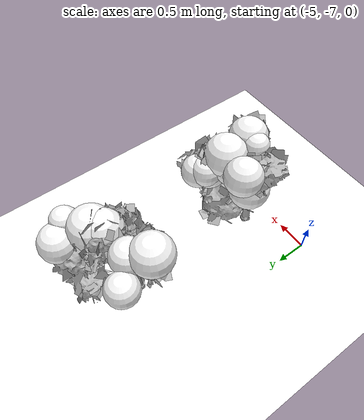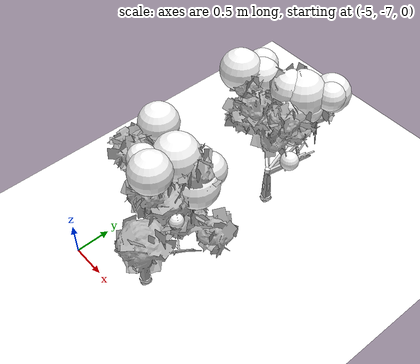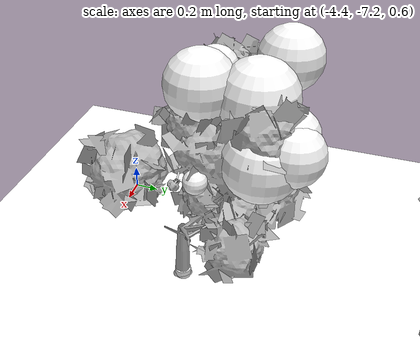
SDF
<sdf version="1.11">
 <world name="peach_orchard">
  <model name="ground">
   <static>true</static>
   <link name="link">
    <visual name="soil">
     <geometry><plane><normal>0 0 1</normal><size>32 22</size></plane></geometry>
     <material>
      <ambient>1 1 1 1</ambient>
      <diffuse>1 1 1 1</diffuse>
      <specular>0.1 0.1 0.1 1</specular>
      <pbr>
       <metal>
        <albedo_map>textures/soil_albedo.png</albedo_map>
        <normal_map type="tangent">textures/soil_normal.png</normal_map>
        <roughness>0.95</roughness>
        <metalness>0</metalness>
       </metal>
      </pbr>
     </material>
    </visual>
    <collision name="c_soil">
     <geometry><plane><normal>0 0 1</normal><size>32 22</size></plane></geometry>
    </collision>
   </link>
  </model>
  <model name="tree_r1_t0">
   <pose>-4 -6.6 0 0 0 0</pose>
   <static>true</static>
   <link name="link">
    <visual name="tree_mesh">
     <pose>0 0 0 0 0 -0.32723</pose>
     <geometry>
      <mesh><uri>model://peach_sim/meshes/peach_tree_a.glb</uri><scale>0.996822 0.996822 0.996822</scale></mesh>
     </geometry>
    </visual>
    <visual name="trunk_0">
     <pose>0 0 0.146524 0 0 0</pose>
     <geometry><cylinder><radius>0.0518545</radius><length>0.293048</length></cylinder></geometry>
     <material>
      <ambient>1 1 1 1</ambient>
      <diffuse>1 1 1 1</diffuse>
      <specular>0.1 0.1 0.1 1</specular>
      <pbr>
       <metal>
        <albedo_map>textures/bark_albedo.png</albedo_map>
        <normal_map type="tangent">textures/bark_normal.png</normal_map>
        <roughness>0.9</roughness>
        <metalness>0</metalness>
       </metal>
      </pbr>
     </material>
    </visual>
    <collision name="c_trunk_0">
     <pose>0 0 0.146524 0 0 0</pose>
     <geometry><cylinder><radius>0.0518545</radius><length>0.293048</length></cylinder></geometry>
    </collision>
    <visual name="trunk_1">
     <pose>0 0 0.412931 0 0 0</pose>
     <geometry><cylinder><radius>0.0373353</radius><length>0.239766</length></cylinder></geometry>
     <material>
      <ambient>1 1 1 1</ambient>
      <diffuse>1 1 1 1</diffuse>
      <specular>0.1 0.1 0.1 1</specular>
      <pbr>
       <metal>
        <albedo_map>textures/bark_albedo.png</albedo_map>
        <normal_map type="tangent">textures/bark_normal.png</normal_map>
        <roughness>0.9</roughness>
        <metalness>0</metalness>
       </metal>
      </pbr>
     </material>
    </visual>
    <collision name="c_trunk_1">
     <pose>0 0 0.412931 0 0 0</pose>
     <geometry><cylinder><radius>0.0373353</radius><length>0.239766</length></cylinder></geometry>
    </collision>
    <visual name="root_flare">
     <pose>0 0 0.035 0 0 0</pose>
     <geometry><cylinder><radius>0.0751891</radius><length>0.07</length></cylinder></geometry>
     <material>
      <ambient>1 1 1 1</ambient>
      <diffuse>1 1 1 1</diffuse>
      <specular>0.1 0.1 0.1 1</specular>
      <pbr>
       <metal>
        <albedo_map>textures/bark_albedo.png</albedo_map>
        <normal_map type="tangent">textures/bark_normal.png</normal_map>
        <roughness>0.95</roughness>
        <metalness>0</metalness>
       </metal>
      </pbr>
     </material>
    </visual>
    <visual name="scaffold_0">
     <pose>-0.120347 0.265685 0.763683 0 0.81755 1.99612</pose>
     <geometry><cylinder><radius>0.022</radius><length>0.799677</length></cylinder></geometry>
     <material>
      <ambient>1 1 1 1</ambient>
      <diffuse>1 1 1 1</diffuse>
      <specular>0.1 0.1 0.1 1</specular>
      <pbr>
       <metal>
        <albedo_map>textures/bark_albedo.png</albedo_map>
        <normal_map type="tangent">textures/bark_normal.png</normal_map>
        <roughness>0.9</roughness>
        <metalness>0</metalness>
       </metal>
      </pbr>
     </material>
    </visual>
    <collision name="c_scaffold_0">
     <pose>-0.120347 0.265685 0.763683 0 0.81755 1.99612</pose>
     <geometry><cylinder><radius>0.022</radius><length>0.799677</length></cylinder></geometry>
    </collision>
    <visual name="branchlet_0_0">
     <pose>-0.0653595 0.373747 0.827793 0 1.86183 0.17893</pose>
     <geometry><cylinder><radius>0.012</radius><length>0.203819</length></cylinder></geometry>
     <material>
      <ambient>1 1 1 1</ambient>
      <diffuse>1 1 1 1</diffuse>
      <specular>0.1 0.1 0.1 1</specular>
      <pbr>
       <metal>
        <albedo_map>textures/bark_albedo.png</albedo_map>
        <normal_map type="tangent">textures/bark_normal.png</normal_map>
        <roughness>0.9</roughness>
        <metalness>0</metalness>
       </metal>
      </pbr>
     </material>
    </visual>
    <visual name="branchlet_0_1">
     <pose>-0.0694995 0.188723 0.861073 0 1.44563 -1.06092</pose>
     <geometry><cylinder><radius>0.012</radius><length>0.347574</length></cylinder></geometry>
     <material>
      <ambient>1 1 1 1</ambient>
      <diffuse>1 1 1 1</diffuse>
      <specular>0.1 0.1 0.1 1</specular>
      <pbr>
       <metal>
        <albedo_map>textures/bark_albedo.png</albedo_map>
        <normal_map type="tangent">textures/bark_normal.png</normal_map>
        <roughness>0.9</roughness>
        <metalness>0</metalness>
       </metal>
      </pbr>
     </material>
    </visual>
    <visual name="branchlet_0_2">
     <pose>-0.223592 0.457648 0.883236 0 1.38306 2.12662</pose>
     <geometry><cylinder><radius>0.012</radius><length>0.232148</length></cylinder></geometry>
     <material>
      <ambient>1 1 1 1</ambient>
      <diffuse>1 1 1 1</diffuse>
      <specular>0.1 0.1 0.1 1</specular>
      <pbr>
       <metal>
        <albedo_map>textures/bark_albedo.png</albedo_map>
        <normal_map type="tangent">textures/bark_normal.png</normal_map>
        <roughness>0.9</roughness>
        <metalness>0</metalness>
       </metal>
      </pbr>
     </material>
    </visual>
    <visual name="scaffold_1">
     <pose>0.030639 0.388616 0.719755 0 1.03858 1.49212</pose>
     <geometry><cylinder><radius>0.022</radius><length>0.904792</length></cylinder></geometry>
     <material>
      <ambient>1 1 1 1</ambient>
      <diffuse>1 1 1 1</diffuse>
      <specular>0.1 0.1 0.1 1</specular>
      <pbr>
       <metal>
        <albedo_map>textures/bark_albedo.png</albedo_map>
        <normal_map type="tangent">textures/bark_normal.png</normal_map>
        <roughness>0.9</roughness>
        <metalness>0</metalness>
       </metal>
      </pbr>
     </material>
    </visual>
    <collision name="c_scaffold_1">
     <pose>0.030639 0.388616 0.719755 0 1.03858 1.49212</pose>
     <geometry><cylinder><radius>0.022</radius><length>0.904792</length></cylinder></geometry>
    </collision>
    <visual name="branchlet_1_0">
     <pose>0.0566015 0.486645 0.768573 0 1.11998 1.31604</pose>
     <geometry><cylinder><radius>0.012</radius><length>0.230577</length></cylinder></geometry>
     <material>
      <ambient>1 1 1 1</ambient>
      <diffuse>1 1 1 1</diffuse>
      <specular>0.1 0.1 0.1 1</specular>
      <pbr>
       <metal>
        <albedo_map>textures/bark_albedo.png</albedo_map>
        <normal_map type="tangent">textures/bark_normal.png</normal_map>
        <roughness>0.9</roughness>
        <metalness>0</metalness>
       </metal>
      </pbr>
     </material>
    </visual>
    <visual name="branchlet_1_1">
     <pose>0.175679 0.353747 0.693187 0 1.63917 -0.0473741</pose>
     <geometry><cylinder><radius>0.012</radius><length>0.295498</length></cylinder></geometry>
     <material>
      <ambient>1 1 1 1</ambient>
      <diffuse>1 1 1 1</diffuse>
      <specular>0.1 0.1 0.1 1</specular>
      <pbr>
       <metal>
        <albedo_map>textures/bark_albedo.png</albedo_map>
        <normal_map type="tangent">textures/bark_normal.png</normal_map>
        <roughness>0.9</roughness>
        <metalness>0</metalness>
       </metal>
      </pbr>
     </material>
    </visual>
    <visual name="canopy_0">
     <pose>0.0268063 0.477382 1.70556 0 0 0</pose>
     <geometry><sphere><radius>0.200922</radius></sphere></geometry>
     <material>
      <ambient>1 1 1 1</ambient>
      <diffuse>1 1 1 1</diffuse>
      <specular>0.1 0.1 0.1 1</specular>
      <pbr>
       <metal>
        <albedo_map>textures/leaf_albedo.png</albedo_map>
        <normal_map type="tangent">textures/leaf_normal.png</normal_map>
        <roughness>0.85</roughness>
        <metalness>0</metalness>
       </metal>
      </pbr>
     </material>
    </visual>
    <collision name="c_canopy_0">
     <pose>0.0268063 0.477382 1.70556 0 0 0</pose>
     <geometry><sphere><radius>0.200922</radius></sphere></geometry>
    </collision>
    <visual name="canopy_1">
     <pose>-0.0529744 0.395323 1.65064 0 0 0</pose>
     <geometry><sphere><radius>0.266367</radius></sphere></geometry>
     <material>
      <ambient>1 1 1 1</ambient>
      <diffuse>1 1 1 1</diffuse>
      <specular>0.1 0.1 0.1 1</specular>
      <pbr>
       <metal>
        <albedo_map>textures/leaf_albedo.png</albedo_map>
        <normal_map type="tangent">textures/leaf_normal.png</normal_map>
        <roughness>0.85</roughness>
        <metalness>0</metalness>
       </metal>
      </pbr>
     </material>
    </visual>
    <collision name="c_canopy_1">
     <pose>-0.0529744 0.395323 1.65064 0 0 0</pose>
     <geometry><sphere><radius>0.266367</radius></sphere></geometry>
    </collision>
    <visual name="canopy_2">
     <pose>0.0413651 0.591344 1.98038 0 0 0</pose>
     <geometry><sphere><radius>0.307055</radius></sphere></geometry>
     <material>
      <ambient>1 1 1 1</ambient>
      <diffuse>1 1 1 1</diffuse>
      <specular>0.1 0.1 0.1 1</specular>
      <pbr>
       <metal>
        <albedo_map>textures/leaf_albedo.png</albedo_map>
        <normal_map type="tangent">textures/leaf_normal.png</normal_map>
        <roughness>0.85</roughness>
        <metalness>0</metalness>
       </metal>
      </pbr>
     </material>
    </visual>
    <collision name="c_canopy_2">
     <pose>0.0413651 0.591344 1.98038 0 0 0</pose>
     <geometry><sphere><radius>0.307055</radius></sphere></geometry>
    </collision>
    <visual name="canopy_3">
     <pose>-0.0891126 0.571707 1.85329 0 0 0</pose>
     <geometry><sphere><radius>0.261802</radius></sphere></geometry>
     <material>
      <ambient>1 1 1 1</ambient>
      <diffuse>1 1 1 1</diffuse>
      <specular>0.1 0.1 0.1 1</specular>
      <pbr>
       <metal>
        <albedo_map>textures/leaf_albedo.png</albedo_map>
        <normal_map type="tangent">textures/leaf_normal.png</normal_map>
        <roughness>0.85</roughness>
        <metalness>0</metalness>
       </metal>
      </pbr>
     </material>
    </visual>
    <visual name="canopy_4">
     <pose>0.0908726 0.167604 2.04433 0 0 0</pose>
     <geometry><sphere><radius>0.274712</radius></sphere></geometry>
     <material>
      <ambient>1 1 1 1</ambient>
      <diffuse>1 1 1 1</diffuse>
      <specular>0.1 0.1 0.1 1</specular>
      <pbr>
       <metal>
        <albedo_map>textures/leaf_albedo.png</albedo_map>
        <normal_map type="tangent">textures/leaf_normal.png</normal_map>
        <roughness>0.85</roughness>
        <metalness>0</metalness>
       </metal>
      </pbr>
     </material>
    </visual>
    <visual name="canopy_5">
     <pose>0.242101 0.907621 1.69181 0 0 0</pose>
     <geometry><sphere><radius>0.235836</radius></sphere></geometry>
     <material>
      <ambient>1 1 1 1</ambient>
      <diffuse>1 1 1 1</diffuse>
      <specular>0.1 0.1 0.1 1</specular>
      <pbr>
       <metal>
        <albedo_map>textures/leaf_albedo.png</albedo_map>
        <normal_map type="tangent">textures/leaf_normal.png</normal_map>
        <roughness>0.85</roughness>
        <metalness>0</metalness>
       </metal>
      </pbr>
     </material>
    </visual>
    <visual name="canopy_6">
     <pose>-0.343609 0.455995 1.553 0 0 0</pose>
     <geometry><sphere><radius>0.293663</radius></sphere></geometry>
     <material>
      <ambient>1 1 1 1</ambient>
      <diffuse>1 1 1 1</diffuse>
      <specular>0.1 0.1 0.1 1</specular>
      <pbr>
       <metal>
        <albedo_map>textures/leaf_albedo.png</albedo_map>
        <normal_map type="tangent">textures/leaf_normal.png</normal_map>
        <roughness>0.85</roughness>
        <metalness>0</metalness>
       </metal>
      </pbr>
     </material>
    </visual>
    <visual name="canopy_7">
     <pose>0.26477 0.69175 1.59641 0 0 0</pose>
     <geometry><sphere><radius>0.301339</radius></sphere></geometry>
     <material>
      <ambient>1 1 1 1</ambient>
      <diffuse>1 1 1 1</diffuse>
      <specular>0.1 0.1 0.1 1</specular>
      <pbr>
       <metal>
        <albedo_map>textures/leaf_albedo.png</albedo_map>
        <normal_map type="tangent">textures/leaf_normal.png</normal_map>
        <roughness>0.85</roughness>
        <metalness>0</metalness>
       </metal>
      </pbr>
     </material>
    </visual>
    <visual name="canopy_8">
     <pose>-0.117869 0.219419 2.07042 0 0 0</pose>
     <geometry><sphere><radius>0.188732</radius></sphere></geometry>
     <material>
      <ambient>1 1 1 1</ambient>
      <diffuse>1 1 1 1</diffuse>
      <specular>0.1 0.1 0.1 1</specular>
      <pbr>
       <metal>
        <albedo_map>textures/leaf_albedo.png</albedo_map>
        <normal_map type="tangent">textures/leaf_normal.png</normal_map>
        <roughness>0.85</roughness>
        <metalness>0</metalness>
       </metal>
      </pbr>
     </material>
    </visual>
    <visual name="canopy_9">
     <pose>0.1259 0.858346 1.76832 0 0 0</pose>
     <geometry><sphere><radius>0.217199</radius></sphere></geometry>
     <material>
      <ambient>1 1 1 1</ambient>
      <diffuse>1 1 1 1</diffuse>
      <specular>0.1 0.1 0.1 1</specular>
      <pbr>
       <metal>
        <albedo_map>textures/leaf_albedo.png</albedo_map>
        <normal_map type="tangent">textures/leaf_normal.png</normal_map>
        <roughness>0.85</roughness>
        <metalness>0</metalness>
       </metal>
      </pbr>
     </material>
    </visual>
    <visual name="canopy_10">
     <pose>-0.443412 0.718659 2.09785 0 0 0</pose>
     <geometry><sphere><radius>0.262059</radius></sphere></geometry>
     <material>
      <ambient>1 1 1 1</ambient>
      <diffuse>1 1 1 1</diffuse>
      <specular>0.1 0.1 0.1 1</specular>
      <pbr>
       <metal>
        <albedo_map>textures/leaf_albedo.png</albedo_map>
        <normal_map type="tangent">textures/leaf_normal.png</normal_map>
        <roughness>0.85</roughness>
        <metalness>0</metalness>
       </metal>
      </pbr>
     </material>
    </visual>
    <visual name="foliage_0">
     <pose>0.429755 0.246917 1.42909 0 0 0</pose>
     <geometry><sphere><radius>0.0951275</radius></sphere></geometry>
     <material>
      <ambient>1 1 1 1</ambient>
      <diffuse>1 1 1 1</diffuse>
      <specular>0.1 0.1 0.1 1</specular>
      <pbr>
       <metal>
        <albedo_map>textures/leaf_albedo.png</albedo_map>
        <normal_map type="tangent">textures/leaf_normal.png</normal_map>
        <roughness>0.85</roughness>
        <metalness>0</metalness>
       </metal>
      </pbr>
     </material>
    </visual>
    <visual name="foliage_4">
     <pose>0.442585 -0.399169 1.33361 0 0 0</pose>
     <geometry><sphere><radius>0.108473</radius></sphere></geometry>
     <material>
      <ambient>1 1 1 1</ambient>
      <diffuse>1 1 1 1</diffuse>
      <specular>0.1 0.1 0.1 1</specular>
      <pbr>
       <metal>
        <albedo_map>textures/leaf_albedo.png</albedo_map>
        <normal_map type="tangent">textures/leaf_normal.png</normal_map>
        <roughness>0.85</roughness>
        <metalness>0</metalness>
       </metal>
      </pbr>
     </material>
    </visual>
    <visual name="foliage_8">
     <pose>0.487489 -0.370563 1.26705 0 0 0</pose>
     <geometry><sphere><radius>0.115801</radius></sphere></geometry>
     <material>
      <ambient>1 1 1 1</ambient>
      <diffuse>1 1 1 1</diffuse>
      <specular>0.1 0.1 0.1 1</specular>
      <pbr>
       <metal>
        <albedo_map>textures/leaf_albedo.png</albedo_map>
        <normal_map type="tangent">textures/leaf_normal.png</normal_map>
        <roughness>0.85</roughness>
        <metalness>0</metalness>
       </metal>
      </pbr>
     </material>
    </visual>
    <visual name="twig_0">
     <pose>0.403369 0.228828 1.50214 0 0.658195 2.63695</pose>
     <geometry><cylinder><radius>0.007</radius><length>0.190513</length></cylinder></geometry>
     <material>
      <ambient>1 1 1 1</ambient>
      <diffuse>1 1 1 1</diffuse>
      <specular>0.1 0.1 0.1 1</specular>
      <pbr>
       <metal>
        <albedo_map>textures/bark_albedo.png</albedo_map>
        <normal_map type="tangent">textures/bark_normal.png</normal_map>
        <roughness>0.9</roughness>
        <metalness>0</metalness>
       </metal>
      </pbr>
     </material>
    </visual>
    <visual name="twig_1">
     <pose>0.38238 0.109194 1.46974 0 0.656179 3.07622</pose>
     <geometry><cylinder><radius>0.007</radius><length>0.169421</length></cylinder></geometry>
     <material>
      <ambient>1 1 1 1</ambient>
      <diffuse>1 1 1 1</diffuse>
      <specular>0.1 0.1 0.1 1</specular>
      <pbr>
       <metal>
        <albedo_map>textures/bark_albedo.png</albedo_map>
        <normal_map type="tangent">textures/bark_normal.png</normal_map>
        <roughness>0.9</roughness>
        <metalness>0</metalness>
       </metal>
      </pbr>
     </material>
    </visual>
    <visual name="twig_2">
     <pose>0.464754 -0.0704765 1.46951 0 0.23201 -2.64196</pose>
     <geometry><cylinder><radius>0.007</radius><length>0.159211</length></cylinder></geometry>
     <material>
      <ambient>1 1 1 1</ambient>
      <diffuse>1 1 1 1</diffuse>
      <specular>0.1 0.1 0.1 1</specular>
      <pbr>
       <metal>
        <albedo_map>textures/bark_albedo.png</albedo_map>
        <normal_map type="tangent">textures/bark_normal.png</normal_map>
        <roughness>0.9</roughness>
        <metalness>0</metalness>
       </metal>
      </pbr>
     </material>
    </visual>
    <visual name="twig_3">
     <pose>0.485276 -0.197911 1.40518 0 0.552631 2.94496</pose>
     <geometry><cylinder><radius>0.007</radius><length>0.108486</length></cylinder></geometry>
     <material>
      <ambient>1 1 1 1</ambient>
      <diffuse>1 1 1 1</diffuse>
      <specular>0.1 0.1 0.1 1</specular>
      <pbr>
       <metal>
        <albedo_map>textures/bark_albedo.png</albedo_map>
        <normal_map type="tangent">textures/bark_normal.png</normal_map>
        <roughness>0.9</roughness>
        <metalness>0</metalness>
       </metal>
      </pbr>
     </material>
    </visual>
    <visual name="twig_4">
     <pose>0.496578 -0.323751 1.41077 0 0.524142 2.4938</pose>
     <geometry><cylinder><radius>0.007</radius><length>0.169643</length></cylinder></geometry>
     <material>
      <ambient>1 1 1 1</ambient>
      <diffuse>1 1 1 1</diffuse>
      <specular>0.1 0.1 0.1 1</specular>
      <pbr>
       <metal>
        <albedo_map>textures/bark_albedo.png</albedo_map>
        <normal_map type="tangent">textures/bark_normal.png</normal_map>
        <roughness>0.9</roughness>
        <metalness>0</metalness>
       </metal>
      </pbr>
     </material>
    </visual>
    <visual name="twig_5">
     <pose>0.530089 -0.218194 1.43145 0 0.286796 2.26721</pose>
     <geometry><cylinder><radius>0.007</radius><length>0.193356</length></cylinder></geometry>
     <material>
      <ambient>1 1 1 1</ambient>
      <diffuse>1 1 1 1</diffuse>
      <specular>0.1 0.1 0.1 1</specular>
      <pbr>
       <metal>
        <albedo_map>textures/bark_albedo.png</albedo_map>
        <normal_map type="tangent">textures/bark_normal.png</normal_map>
        <roughness>0.9</roughness>
        <metalness>0</metalness>
       </metal>
      </pbr>
     </material>
    </visual>
    <visual name="twig_6">
     <pose>0.524428 -0.248347 1.42431 0 0.167302 -2.90899</pose>
     <geometry><cylinder><radius>0.007</radius><length>0.186911</length></cylinder></geometry>
     <material>
      <ambient>1 1 1 1</ambient>
      <diffuse>1 1 1 1</diffuse>
      <specular>0.1 0.1 0.1 1</specular>
      <pbr>
       <metal>
        <albedo_map>textures/bark_albedo.png</albedo_map>
        <normal_map type="tangent">textures/bark_normal.png</normal_map>
        <roughness>0.9</roughness>
        <metalness>0</metalness>
       </metal>
      </pbr>
     </material>
    </visual>
    <visual name="twig_7">
     <pose>0.535722 -0.347136 1.4248 0 0.385861 -2.88505</pose>
     <geometry><cylinder><radius>0.007</radius><length>0.205525</length></cylinder></geometry>
     <material>
      <ambient>1 1 1 1</ambient>
      <diffuse>1 1 1 1</diffuse>
      <specular>0.1 0.1 0.1 1</specular>
      <pbr>
       <metal>
        <albedo_map>textures/bark_albedo.png</albedo_map>
        <normal_map type="tangent">textures/bark_normal.png</normal_map>
        <roughness>0.9</roughness>
        <metalness>0</metalness>
       </metal>
      </pbr>
     </material>
    </visual>
    <visual name="twig_8">
     <pose>0.478027 -0.326809 1.38139 0 0.571578 2.63498</pose>
     <geometry><cylinder><radius>0.007</radius><length>0.108937</length></cylinder></geometry>
     <material>
      <ambient>1 1 1 1</ambient>
      <diffuse>1 1 1 1</diffuse>
      <specular>0.1 0.1 0.1 1</specular>
      <pbr>
       <metal>
        <albedo_map>textures/bark_albedo.png</albedo_map>
        <normal_map type="tangent">textures/bark_normal.png</normal_map>
        <roughness>0.9</roughness>
        <metalness>0</metalness>
       </metal>
      </pbr>
     </material>
    </visual>
   </link>
  </model>
  <model name="tree_r1_t1">
   <pose>-4 -4.4 0 0 0 0</pose>
   <static>true</static>
   <link name="link">
    <visual name="tree_mesh">
     <pose>0 0 0 0 0 -0.132641</pose>
     <geometry>
      <mesh><uri>model://peach_sim/meshes/peach_tree_b.glb</uri><scale>0.957476 0.957476 0.957476</scale></mesh>
     </geometry>
    </visual>
    <visual name="trunk_0">
     <pose>0 0 0.168401 0 0 0</pose>
     <geometry><cylinder><radius>0.0518388</radius><length>0.336802</length></cylinder></geometry>
     <material>
      <ambient>1 1 1 1</ambient>
      <diffuse>1 1 1 1</diffuse>
      <specular>0.1 0.1 0.1 1</specular>
      <pbr>
       <metal>
        <albedo_map>textures/bark_albedo.png</albedo_map>
        <normal_map type="tangent">textures/bark_normal.png</normal_map>
        <roughness>0.9</roughness>
        <metalness>0</metalness>
       </metal>
      </pbr>
     </material>
    </visual>
    <collision name="c_trunk_0">
     <pose>0 0 0.168401 0 0 0</pose>
     <geometry><cylinder><radius>0.0518388</radius><length>0.336802</length></cylinder></geometry>
    </collision>
    <visual name="trunk_1">
     <pose>0 0 0.474585 0 0 0</pose>
     <geometry><cylinder><radius>0.0373239</radius><length>0.275565</length></cylinder></geometry>
     <material>
      <ambient>1 1 1 1</ambient>
      <diffuse>1 1 1 1</diffuse>
      <specular>0.1 0.1 0.1 1</specular>
      <pbr>
       <metal>
        <albedo_map>textures/bark_albedo.png</albedo_map>
        <normal_map type="tangent">textures/bark_normal.png</normal_map>
        <roughness>0.9</roughness>
        <metalness>0</metalness>
       </metal>
      </pbr>
     </material>
    </visual>
    <collision name="c_trunk_1">
     <pose>0 0 0.474585 0 0 0</pose>
     <geometry><cylinder><radius>0.0373239</radius><length>0.275565</length></cylinder></geometry>
    </collision>
    <visual name="root_flare">
     <pose>0 0 0.035 0 0 0</pose>
     <geometry><cylinder><radius>0.0751662</radius><length>0.07</length></cylinder></geometry>
     <material>
      <ambient>1 1 1 1</ambient>
      <diffuse>1 1 1 1</diffuse>
      <specular>0.1 0.1 0.1 1</specular>
      <pbr>
       <metal>
        <albedo_map>textures/bark_albedo.png</albedo_map>
        <normal_map type="tangent">textures/bark_normal.png</normal_map>
        <roughness>0.95</roughness>
        <metalness>0</metalness>
       </metal>
      </pbr>
     </material>
    </visual>
    <visual name="scaffold_0">
     <pose>0.0123424 0.297148 0.808771 0 0.880928 1.52928</pose>
     <geometry><cylinder><radius>0.022</radius><length>0.771148</length></cylinder></geometry>
     <material>
      <ambient>1 1 1 1</ambient>
      <diffuse>1 1 1 1</diffuse>
      <specular>0.1 0.1 0.1 1</specular>
      <pbr>
       <metal>
        <albedo_map>textures/bark_albedo.png</albedo_map>
        <normal_map type="tangent">textures/bark_normal.png</normal_map>
        <roughness>0.9</roughness>
        <metalness>0</metalness>
       </metal>
      </pbr>
     </material>
    </visual>
    <collision name="c_scaffold_0">
     <pose>0.0123424 0.297148 0.808771 0 0.880928 1.52928</pose>
     <geometry><cylinder><radius>0.022</radius><length>0.771148</length></cylinder></geometry>
    </collision>
    <visual name="branchlet_0_0">
     <pose>0.0474894 0.454116 1.0724 0 0.219343 0.452546</pose>
     <geometry><cylinder><radius>0.012</radius><length>0.298614</length></cylinder></geometry>
     <material>
      <ambient>1 1 1 1</ambient>
      <diffuse>1 1 1 1</diffuse>
      <specular>0.1 0.1 0.1 1</specular>
      <pbr>
       <metal>
        <albedo_map>textures/bark_albedo.png</albedo_map>
        <normal_map type="tangent">textures/bark_normal.png</normal_map>
        <roughness>0.9</roughness>
        <metalness>0</metalness>
       </metal>
      </pbr>
     </material>
    </visual>
    <visual name="branchlet_0_1">
     <pose>-0.00817924 0.499219 0.882121 0 1.65369 1.80653</pose>
     <geometry><cylinder><radius>0.012</radius><length>0.211827</length></cylinder></geometry>
     <material>
      <ambient>1 1 1 1</ambient>
      <diffuse>1 1 1 1</diffuse>
      <specular>0.1 0.1 0.1 1</specular>
      <pbr>
       <metal>
        <albedo_map>textures/bark_albedo.png</albedo_map>
        <normal_map type="tangent">textures/bark_normal.png</normal_map>
        <roughness>0.9</roughness>
        <metalness>0</metalness>
       </metal>
      </pbr>
     </material>
    </visual>
    <visual name="branchlet_0_2">
     <pose>0.0875504 0.438173 0.925283 0 0.982243 0.940324</pose>
     <geometry><cylinder><radius>0.012</radius><length>0.299939</length></cylinder></geometry>
     <material>
      <ambient>1 1 1 1</ambient>
      <diffuse>1 1 1 1</diffuse>
      <specular>0.1 0.1 0.1 1</specular>
      <pbr>
       <metal>
        <albedo_map>textures/bark_albedo.png</albedo_map>
        <normal_map type="tangent">textures/bark_normal.png</normal_map>
        <roughness>0.9</roughness>
        <metalness>0</metalness>
       </metal>
      </pbr>
     </material>
    </visual>
    <visual name="scaffold_1">
     <pose>0.15691 0.203394 0.724868 0 1.00958 0.913702</pose>
     <geometry><cylinder><radius>0.022</radius><length>0.606859</length></cylinder></geometry>
     <material>
      <ambient>1 1 1 1</ambient>
      <diffuse>1 1 1 1</diffuse>
      <specular>0.1 0.1 0.1 1</specular>
      <pbr>
       <metal>
        <albedo_map>textures/bark_albedo.png</albedo_map>
        <normal_map type="tangent">textures/bark_normal.png</normal_map>
        <roughness>0.9</roughness>
        <metalness>0</metalness>
       </metal>
      </pbr>
     </material>
    </visual>
    <collision name="c_scaffold_1">
     <pose>0.15691 0.203394 0.724868 0 1.00958 0.913702</pose>
     <geometry><cylinder><radius>0.022</radius><length>0.606859</length></cylinder></geometry>
    </collision>
    <visual name="branchlet_1_0">
     <pose>0.31396 0.380114 0.875929 0 0.99754 0.781963</pose>
     <geometry><cylinder><radius>0.012</radius><length>0.297273</length></cylinder></geometry>
     <material>
      <ambient>1 1 1 1</ambient>
      <diffuse>1 1 1 1</diffuse>
      <specular>0.1 0.1 0.1 1</specular>
      <pbr>
       <metal>
        <albedo_map>textures/bark_albedo.png</albedo_map>
        <normal_map type="tangent">textures/bark_normal.png</normal_map>
        <roughness>0.9</roughness>
        <metalness>0</metalness>
       </metal>
      </pbr>
     </material>
    </visual>
    <visual name="branchlet_1_1">
     <pose>0.229053 0.349919 0.903893 0 0.567237 1.33806</pose>
     <geometry><cylinder><radius>0.012</radius><length>0.292734</length></cylinder></geometry>
     <material>
      <ambient>1 1 1 1</ambient>
      <diffuse>1 1 1 1</diffuse>
      <specular>0.1 0.1 0.1 1</specular>
      <pbr>
       <metal>
        <albedo_map>textures/bark_albedo.png</albedo_map>
        <normal_map type="tangent">textures/bark_normal.png</normal_map>
        <roughness>0.9</roughness>
        <metalness>0</metalness>
       </metal>
      </pbr>
     </material>
    </visual>
    <visual name="branchlet_1_2">
     <pose>0.264213 0.115889 0.810868 0 1.22958 -1.04259</pose>
     <geometry><cylinder><radius>0.012</radius><length>0.317019</length></cylinder></geometry>
     <material>
      <ambient>1 1 1 1</ambient>
      <diffuse>1 1 1 1</diffuse>
      <specular>0.1 0.1 0.1 1</specular>
      <pbr>
       <metal>
        <albedo_map>textures/bark_albedo.png</albedo_map>
        <normal_map type="tangent">textures/bark_normal.png</normal_map>
        <roughness>0.9</roughness>
        <metalness>0</metalness>
       </metal>
      </pbr>
     </material>
    </visual>
    <visual name="scaffold_2">
     <pose>-0.302928 0.226725 0.81593 0 0.982244 2.49909</pose>
     <geometry><cylinder><radius>0.022</radius><length>0.909839</length></cylinder></geometry>
     <material>
      <ambient>1 1 1 1</ambient>
      <diffuse>1 1 1 1</diffuse>
      <specular>0.1 0.1 0.1 1</specular>
      <pbr>
       <metal>
        <albedo_map>textures/bark_albedo.png</albedo_map>
        <normal_map type="tangent">textures/bark_normal.png</normal_map>
        <roughness>0.9</roughness>
        <metalness>0</metalness>
       </metal>
      </pbr>
     </material>
    </visual>
    <collision name="c_scaffold_2">
     <pose>-0.302928 0.226725 0.81593 0 0.982244 2.49909</pose>
     <geometry><cylinder><radius>0.022</radius><length>0.909839</length></cylinder></geometry>
    </collision>
    <visual name="branchlet_2_0">
     <pose>-0.217909 0.340821 0.874767 0 1.12716 1.026</pose>
     <geometry><cylinder><radius>0.012</radius><length>0.316589</length></cylinder></geometry>
     <material>
      <ambient>1 1 1 1</ambient>
      <diffuse>1 1 1 1</diffuse>
      <specular>0.1 0.1 0.1 1</specular>
      <pbr>
       <metal>
        <albedo_map>textures/bark_albedo.png</albedo_map>
        <normal_map type="tangent">textures/bark_normal.png</normal_map>
        <roughness>0.9</roughness>
        <metalness>0</metalness>
       </metal>
      </pbr>
     </material>
    </visual>
    <visual name="branchlet_2_1">
     <pose>-0.409996 0.31818 1.09662 0 0.712817 -0.554056</pose>
     <geometry><cylinder><radius>0.012</radius><length>0.313765</length></cylinder></geometry>
     <material>
      <ambient>1 1 1 1</ambient>
      <diffuse>1 1 1 1</diffuse>
      <specular>0.1 0.1 0.1 1</specular>
      <pbr>
       <metal>
        <albedo_map>textures/bark_albedo.png</albedo_map>
        <normal_map type="tangent">textures/bark_normal.png</normal_map>
        <roughness>0.9</roughness>
        <metalness>0</metalness>
       </metal>
      </pbr>
     </material>
    </visual>
    <visual name="canopy_0">
     <pose>0.0343333 0.286653 1.92797 0 0 0</pose>
     <geometry><sphere><radius>0.268078</radius></sphere></geometry>
     <material>
      <ambient>1 1 1 1</ambient>
      <diffuse>1 1 1 1</diffuse>
      <specular>0.1 0.1 0.1 1</specular>
      <pbr>
       <metal>
        <albedo_map>textures/leaf_albedo.png</albedo_map>
        <normal_map type="tangent">textures/leaf_normal.png</normal_map>
        <roughness>0.85</roughness>
        <metalness>0</metalness>
       </metal>
      </pbr>
     </material>
    </visual>
    <collision name="c_canopy_0">
     <pose>0.0343333 0.286653 1.92797 0 0 0</pose>
     <geometry><sphere><radius>0.268078</radius></sphere></geometry>
    </collision>
    <visual name="canopy_1">
     <pose>0.213889 0.355986 1.92326 0 0 0</pose>
     <geometry><sphere><radius>0.206475</radius></sphere></geometry>
     <material>
      <ambient>1 1 1 1</ambient>
      <diffuse>1 1 1 1</diffuse>
      <specular>0.1 0.1 0.1 1</specular>
      <pbr>
       <metal>
        <albedo_map>textures/leaf_albedo.png</albedo_map>
        <normal_map type="tangent">textures/leaf_normal.png</normal_map>
        <roughness>0.85</roughness>
        <metalness>0</metalness>
       </metal>
      </pbr>
     </material>
    </visual>
    <collision name="c_canopy_1">
     <pose>0.213889 0.355986 1.92326 0 0 0</pose>
     <geometry><sphere><radius>0.206475</radius></sphere></geometry>
    </collision>
    <visual name="canopy_2">
     <pose>-0.700309 0.493114 1.78684 0 0 0</pose>
     <geometry><sphere><radius>0.222351</radius></sphere></geometry>
     <material>
      <ambient>1 1 1 1</ambient>
      <diffuse>1 1 1 1</diffuse>
      <specular>0.1 0.1 0.1 1</specular>
      <pbr>
       <metal>
        <albedo_map>textures/leaf_albedo.png</albedo_map>
        <normal_map type="tangent">textures/leaf_normal.png</normal_map>
        <roughness>0.85</roughness>
        <metalness>0</metalness>
       </metal>
      </pbr>
     </material>
    </visual>
    <collision name="c_canopy_2">
     <pose>-0.700309 0.493114 1.78684 0 0 0</pose>
     <geometry><sphere><radius>0.222351</radius></sphere></geometry>
    </collision>
    <visual name="canopy_3">
     <pose>0.126836 0.218817 1.74004 0 0 0</pose>
     <geometry><sphere><radius>0.265535</radius></sphere></geometry>
     <material>
      <ambient>1 1 1 1</ambient>
      <diffuse>1 1 1 1</diffuse>
      <specular>0.1 0.1 0.1 1</specular>
      <pbr>
       <metal>
        <albedo_map>textures/leaf_albedo.png</albedo_map>
        <normal_map type="tangent">textures/leaf_normal.png</normal_map>
        <roughness>0.85</roughness>
        <metalness>0</metalness>
       </metal>
      </pbr>
     </material>
    </visual>
    <visual name="canopy_4">
     <pose>0.154431 0.386848 1.88675 0 0 0</pose>
     <geometry><sphere><radius>0.313889</radius></sphere></geometry>
     <material>
      <ambient>1 1 1 1</ambient>
      <diffuse>1 1 1 1</diffuse>
      <specular>0.1 0.1 0.1 1</specular>
      <pbr>
       <metal>
        <albedo_map>textures/leaf_albedo.png</albedo_map>
        <normal_map type="tangent">textures/leaf_normal.png</normal_map>
        <roughness>0.85</roughness>
        <metalness>0</metalness>
       </metal>
      </pbr>
     </material>
    </visual>
    <visual name="canopy_5">
     <pose>-0.626338 0.0227901 1.9939 0 0 0</pose>
     <geometry><sphere><radius>0.285326</radius></sphere></geometry>
     <material>
      <ambient>1 1 1 1</ambient>
      <diffuse>1 1 1 1</diffuse>
      <specular>0.1 0.1 0.1 1</specular>
      <pbr>
       <metal>
        <albedo_map>textures/leaf_albedo.png</albedo_map>
        <normal_map type="tangent">textures/leaf_normal.png</normal_map>
        <roughness>0.85</roughness>
        <metalness>0</metalness>
       </metal>
      </pbr>
     </material>
    </visual>
    <visual name="canopy_6">
     <pose>0.275414 0.393758 1.69249 0 0 0</pose>
     <geometry><sphere><radius>0.191848</radius></sphere></geometry>
     <material>
      <ambient>1 1 1 1</ambient>
      <diffuse>1 1 1 1</diffuse>
      <specular>0.1 0.1 0.1 1</specular>
      <pbr>
       <metal>
        <albedo_map>textures/leaf_albedo.png</albedo_map>
        <normal_map type="tangent">textures/leaf_normal.png</normal_map>
        <roughness>0.85</roughness>
        <metalness>0</metalness>
       </metal>
      </pbr>
     </material>
    </visual>
    <visual name="canopy_7">
     <pose>0.446552 0.602362 1.89412 0 0 0</pose>
     <geometry><sphere><radius>0.193072</radius></sphere></geometry>
     <material>
      <ambient>1 1 1 1</ambient>
      <diffuse>1 1 1 1</diffuse>
      <specular>0.1 0.1 0.1 1</specular>
      <pbr>
       <metal>
        <albedo_map>textures/leaf_albedo.png</albedo_map>
        <normal_map type="tangent">textures/leaf_normal.png</normal_map>
        <roughness>0.85</roughness>
        <metalness>0</metalness>
       </metal>
      </pbr>
     </material>
    </visual>
    <visual name="canopy_8">
     <pose>-0.436977 0.23212 1.89759 0 0 0</pose>
     <geometry><sphere><radius>0.244072</radius></sphere></geometry>
     <material>
      <ambient>1 1 1 1</ambient>
      <diffuse>1 1 1 1</diffuse>
      <specular>0.1 0.1 0.1 1</specular>
      <pbr>
       <metal>
        <albedo_map>textures/leaf_albedo.png</albedo_map>
        <normal_map type="tangent">textures/leaf_normal.png</normal_map>
        <roughness>0.85</roughness>
        <metalness>0</metalness>
       </metal>
      </pbr>
     </material>
    </visual>
    <visual name="canopy_9">
     <pose>0.300186 0.791278 1.75448 0 0 0</pose>
     <geometry><sphere><radius>0.265685</radius></sphere></geometry>
     <material>
      <ambient>1 1 1 1</ambient>
      <diffuse>1 1 1 1</diffuse>
      <specular>0.1 0.1 0.1 1</specular>
      <pbr>
       <metal>
        <albedo_map>textures/leaf_albedo.png</albedo_map>
        <normal_map type="tangent">textures/leaf_normal.png</normal_map>
        <roughness>0.85</roughness>
        <metalness>0</metalness>
       </metal>
      </pbr>
     </material>
    </visual>
    <visual name="foliage_0">
     <pose>0.224185 0.170536 1.24422 0 0 0</pose>
     <geometry><sphere><radius>0.0959682</radius></sphere></geometry>
     <material>
      <ambient>1 1 1 1</ambient>
      <diffuse>1 1 1 1</diffuse>
      <specular>0.1 0.1 0.1 1</specular>
      <pbr>
       <metal>
        <albedo_map>textures/leaf_albedo.png</albedo_map>
        <normal_map type="tangent">textures/leaf_normal.png</normal_map>
        <roughness>0.85</roughness>
        <metalness>0</metalness>
       </metal>
      </pbr>
     </material>
    </visual>
    <visual name="foliage_4">
     <pose>0.496157 -0.130018 1.24896 0 0 0</pose>
     <geometry><sphere><radius>0.126031</radius></sphere></geometry>
     <material>
      <ambient>1 1 1 1</ambient>
      <diffuse>1 1 1 1</diffuse>
      <specular>0.1 0.1 0.1 1</specular>
      <pbr>
       <metal>
        <albedo_map>textures/leaf_albedo.png</albedo_map>
        <normal_map type="tangent">textures/leaf_normal.png</normal_map>
        <roughness>0.85</roughness>
        <metalness>0</metalness>
       </metal>
      </pbr>
     </material>
    </visual>
    <visual name="twig_0">
     <pose>0.195337 0.192765 1.43286 0 0.694716 -2.99132</pose>
     <geometry><cylinder><radius>0.007</radius><length>0.155335</length></cylinder></geometry>
     <material>
      <ambient>1 1 1 1</ambient>
      <diffuse>1 1 1 1</diffuse>
      <specular>0.1 0.1 0.1 1</specular>
      <pbr>
       <metal>
        <albedo_map>textures/bark_albedo.png</albedo_map>
        <normal_map type="tangent">textures/bark_normal.png</normal_map>
        <roughness>0.9</roughness>
        <metalness>0</metalness>
       </metal>
      </pbr>
     </material>
    </visual>
    <visual name="twig_1">
     <pose>0.298718 0.444733 1.42536 0 0.372523 -2.83512</pose>
     <geometry><cylinder><radius>0.007</radius><length>0.11825</length></cylinder></geometry>
     <material>
      <ambient>1 1 1 1</ambient>
      <diffuse>1 1 1 1</diffuse>
      <specular>0.1 0.1 0.1 1</specular>
      <pbr>
       <metal>
        <albedo_map>textures/bark_albedo.png</albedo_map>
        <normal_map type="tangent">textures/bark_normal.png</normal_map>
        <roughness>0.9</roughness>
        <metalness>0</metalness>
       </metal>
      </pbr>
     </material>
    </visual>
    <visual name="twig_2">
     <pose>0.32629 0.519317 1.40618 0 0.4673 3.03477</pose>
     <geometry><cylinder><radius>0.007</radius><length>0.12379</length></cylinder></geometry>
     <material>
      <ambient>1 1 1 1</ambient>
      <diffuse>1 1 1 1</diffuse>
      <specular>0.1 0.1 0.1 1</specular>
      <pbr>
       <metal>
        <albedo_map>textures/bark_albedo.png</albedo_map>
        <normal_map type="tangent">textures/bark_normal.png</normal_map>
        <roughness>0.9</roughness>
        <metalness>0</metalness>
       </metal>
      </pbr>
     </material>
    </visual>
    <visual name="twig_3">
     <pose>0.386166 0.699862 1.39001 0 0.574559 3.117</pose>
     <geometry><cylinder><radius>0.007</radius><length>0.131117</length></cylinder></geometry>
     <material>
      <ambient>1 1 1 1</ambient>
      <diffuse>1 1 1 1</diffuse>
      <specular>0.1 0.1 0.1 1</specular>
      <pbr>
       <metal>
        <albedo_map>textures/bark_albedo.png</albedo_map>
        <normal_map type="tangent">textures/bark_normal.png</normal_map>
        <roughness>0.9</roughness>
        <metalness>0</metalness>
       </metal>
      </pbr>
     </material>
    </visual>
    <visual name="twig_4">
     <pose>0.456695 -0.180871 1.41231 0 0.425752 2.95527</pose>
     <geometry><cylinder><radius>0.007</radius><length>0.136269</length></cylinder></geometry>
     <material>
      <ambient>1 1 1 1</ambient>
      <diffuse>1 1 1 1</diffuse>
      <specular>0.1 0.1 0.1 1</specular>
      <pbr>
       <metal>
        <albedo_map>textures/bark_albedo.png</albedo_map>
        <normal_map type="tangent">textures/bark_normal.png</normal_map>
        <roughness>0.9</roughness>
        <metalness>0</metalness>
       </metal>
      </pbr>
     </material>
    </visual>
    <visual name="twig_5">
     <pose>0.498755 0.0175508 1.3676 0 0.685299 2.772</pose>
     <geometry><cylinder><radius>0.007</radius><length>0.145495</length></cylinder></geometry>
     <material>
      <ambient>1 1 1 1</ambient>
      <diffuse>1 1 1 1</diffuse>
      <specular>0.1 0.1 0.1 1</specular>
      <pbr>
       <metal>
        <albedo_map>textures/bark_albedo.png</albedo_map>
        <normal_map type="tangent">textures/bark_normal.png</normal_map>
        <roughness>0.9</roughness>
        <metalness>0</metalness>
       </metal>
      </pbr>
     </material>
    </visual>
    <visual name="twig_6">
     <pose>0.498287 0.139745 1.40725 0 0.596792 -2.78055</pose>
     <geometry><cylinder><radius>0.007</radius><length>0.140974</length></cylinder></geometry>
     <material>
      <ambient>1 1 1 1</ambient>
      <diffuse>1 1 1 1</diffuse>
      <specular>0.1 0.1 0.1 1</specular>
      <pbr>
       <metal>
        <albedo_map>textures/bark_albedo.png</albedo_map>
        <normal_map type="tangent">textures/bark_normal.png</normal_map>
        <roughness>0.9</roughness>
        <metalness>0</metalness>
       </metal>
      </pbr>
     </material>
    </visual>
    <visual name="twig_7">
     <pose>0.524007 0.293788 1.42108 0 0.252189 2.63015</pose>
     <geometry><cylinder><radius>0.007</radius><length>0.191486</length></cylinder></geometry>
     <material>
      <ambient>1 1 1 1</ambient>
      <diffuse>1 1 1 1</diffuse>
      <specular>0.1 0.1 0.1 1</specular>
      <pbr>
       <metal>
        <albedo_map>textures/bark_albedo.png</albedo_map>
        <normal_map type="tangent">textures/bark_normal.png</normal_map>
        <roughness>0.9</roughness>
        <metalness>0</metalness>
       </metal>
      </pbr>
     </material>
    </visual>
   </link>
  </model>
  <model name="peach_tree_r1_t0_00">
   <pose>-3.54375 -6.40748 1.36258 0 0.129328 1.79713</pose>
   <static>true</static>
   <link name="bag">
    <visual name="bag_mesh">
     <pose>0 0 0.041374 0 0 0</pose>
     <geometry>
      <mesh><uri>model://peach_sim/meshes/bagged_peach.glb</uri><scale>0.955177 1.17665 0.940318</scale></mesh>
     </geometry>
    </visual>
    <visual name="body">
     <pose>0 0 0.023374 0 0 0</pose>
     <geometry><ellipsoid><radii>0.0358191 0.0305929 0.0252439</radii></ellipsoid></geometry>
     <material>
      <ambient>1 1 1 1</ambient>
      <diffuse>1 1 1 1</diffuse>
      <specular>0.1 0.1 0.1 1</specular>
      <pbr>
       <metal>
        <albedo_map>textures/paper_bag_albedo.png</albedo_map>
        <normal_map type="tangent">textures/paper_bag_normal.png</normal_map>
        <roughness>0.72</roughness>
        <metalness>0</metalness>
       </metal>
      </pbr>
     </material>
    </visual>
    <visual name="bottom_fold">
     <pose>0 0 0.012 0 0 0.35</pose>
     <geometry><box><size>0.0555196 0.0351819 0.022</size></box></geometry>
     <material>
      <ambient>1 1 1 1</ambient>
      <diffuse>1 1 1 1</diffuse>
      <specular>0.1 0.1 0.1 1</specular>
      <pbr>
       <metal>
        <albedo_map>textures/paper_bag_albedo.png</albedo_map>
        <normal_map type="tangent">textures/paper_bag_normal.png</normal_map>
        <roughness>0.8</roughness>
        <metalness>0</metalness>
       </metal>
      </pbr>
     </material>
    </visual>
    <visual name="fruit">
     <pose>0 0 0.019299 0 0 0</pose>
     <geometry><sphere><radius>0.026311</radius></sphere></geometry>
     <material>
      <ambient>1 1 1 1</ambient>
      <diffuse>1 1 1 1</diffuse>
      <specular>0.1 0.1 0.1 1</specular>
      <pbr>
       <metal>
        <albedo_map>textures/fruit_skin_albedo.png</albedo_map>
        <normal_map type="tangent">textures/fruit_skin_normal.png</normal_map>
        <roughness>0.55</roughness>
        <metalness>0</metalness>
       </metal>
      </pbr>
     </material>
    </visual>
    <visual name="neck">
     <pose>0 0 0.055748 0 0 0</pose>
     <geometry><cylinder><radius>0.013</radius><length>0.018</length></cylinder></geometry>
     <material>
      <ambient>1 1 1 1</ambient>
      <diffuse>1 1 1 1</diffuse>
      <specular>0.1 0.1 0.1 1</specular>
      <pbr>
       <metal>
        <albedo_map>textures/paper_bag_albedo.png</albedo_map>
        <normal_map type="tangent">textures/paper_bag_normal.png</normal_map>
        <roughness>0.75</roughness>
        <metalness>0</metalness>
       </metal>
      </pbr>
     </material>
    </visual>
    <visual name="gather">
     <pose>0 0 0.036748 0 0 0</pose>
     <geometry><cylinder><radius>0.019</radius><length>0.02</length></cylinder></geometry>
     <material>
      <ambient>1 1 1 1</ambient>
      <diffuse>1 1 1 1</diffuse>
      <specular>0.1 0.1 0.1 1</specular>
      <pbr>
       <metal>
        <albedo_map>textures/paper_bag_albedo.png</albedo_map>
        <normal_map type="tangent">textures/paper_bag_normal.png</normal_map>
        <roughness>0.8</roughness>
        <metalness>0</metalness>
       </metal>
      </pbr>
     </material>
    </visual>
    <visual name="inner_paper">
     <pose>0 0 0.060748 0 0 0</pose>
     <geometry><cylinder><radius>0.01</radius><length>0.008</length></cylinder></geometry>
     <material>
      <ambient>0.180392 0.14902 0.133333 1</ambient>
      <diffuse>0.180392 0.14902 0.133333 1</diffuse>
      <specular>0.1 0.1 0.1 1</specular>
     </material>
    </visual>
    <visual name="wire_0">
     <pose>0 0 0.050748 0 0 0</pose>
     <geometry><cylinder><radius>0.0205</radius><length>0.0035</length></cylinder></geometry>
     <material>
      <ambient>0.25 0.25 0.25 1</ambient>
      <diffuse>0.25 0.25 0.25 1</diffuse>
      <specular>0.1 0.1 0.1 1</specular>
     </material>
    </visual>
    <visual name="wire_1">
     <pose>0 0 0.057748 0 0 0</pose>
     <geometry><cylinder><radius>0.0205</radius><length>0.0035</length></cylinder></geometry>
     <material>
      <ambient>0.25 0.25 0.25 1</ambient>
      <diffuse>0.25 0.25 0.25 1</diffuse>
      <specular>0.1 0.1 0.1 1</specular>
     </material>
    </visual>
    <visual name="wire_tail">
     <pose>0.01 0 0.058748 0 0.521618 0</pose>
     <geometry><cylinder><radius>0.0012</radius><length>0.026</length></cylinder></geometry>
     <material>
      <ambient>0.25 0.25 0.25 1</ambient>
      <diffuse>0.25 0.25 0.25 1</diffuse>
      <specular>0.1 0.1 0.1 1</specular>
     </material>
    </visual>
    <collision name="c_body">
     <pose>0 0 0.023374 0 0 0</pose>
     <geometry><cylinder><radius>0.0358191</radius><length>0.046748</length></cylinder></geometry>
    </collision>
   </link>
  </model>
  <model name="peach_tree_r1_t0_01">
   <pose>-3.5302 -6.52978 1.35108 0 0.775359 2.35971</pose>
   <static>true</static>
   <link name="bag">
    <visual name="bag_mesh">
     <pose>0 0 0.045086 0 0 0</pose>
     <geometry>
      <mesh><uri>model://peach_sim/meshes/bagged_peach.glb</uri><scale>1.06356 1.2914 1.02468</scale></mesh>
     </geometry>
    </visual>
    <visual name="body">
     <pose>0 0 0.027086 0 0 0</pose>
     <geometry><ellipsoid><radii>0.0398834 0.0335764 0.0292528</radii></ellipsoid></geometry>
     <material>
      <ambient>1 1 1 1</ambient>
      <diffuse>1 1 1 1</diffuse>
      <specular>0.1 0.1 0.1 1</specular>
      <pbr>
       <metal>
        <albedo_map>textures/paper_bag_albedo.png</albedo_map>
        <normal_map type="tangent">textures/paper_bag_normal.png</normal_map>
        <roughness>0.72</roughness>
        <metalness>0</metalness>
       </metal>
      </pbr>
     </material>
    </visual>
    <visual name="bottom_fold">
     <pose>0 0 0.012 0 0 0.35</pose>
     <geometry><box><size>0.0618193 0.0386129 0.022</size></box></geometry>
     <material>
      <ambient>1 1 1 1</ambient>
      <diffuse>1 1 1 1</diffuse>
      <specular>0.1 0.1 0.1 1</specular>
      <pbr>
       <metal>
        <albedo_map>textures/paper_bag_albedo.png</albedo_map>
        <normal_map type="tangent">textures/paper_bag_normal.png</normal_map>
        <roughness>0.8</roughness>
        <metalness>0</metalness>
       </metal>
      </pbr>
     </material>
    </visual>
    <visual name="fruit">
     <pose>0 0 0.0194569 0 0 0</pose>
     <geometry><sphere><radius>0.0264752</radius></sphere></geometry>
     <material>
      <ambient>1 1 1 1</ambient>
      <diffuse>1 1 1 1</diffuse>
      <specular>0.1 0.1 0.1 1</specular>
      <pbr>
       <metal>
        <albedo_map>textures/fruit_skin_albedo.png</albedo_map>
        <normal_map type="tangent">textures/fruit_skin_normal.png</normal_map>
        <roughness>0.55</roughness>
        <metalness>0</metalness>
       </metal>
      </pbr>
     </material>
    </visual>
    <visual name="neck">
     <pose>0 0 0.0631719 0 0 0</pose>
     <geometry><cylinder><radius>0.013</radius><length>0.018</length></cylinder></geometry>
     <material>
      <ambient>1 1 1 1</ambient>
      <diffuse>1 1 1 1</diffuse>
      <specular>0.1 0.1 0.1 1</specular>
      <pbr>
       <metal>
        <albedo_map>textures/paper_bag_albedo.png</albedo_map>
        <normal_map type="tangent">textures/paper_bag_normal.png</normal_map>
        <roughness>0.75</roughness>
        <metalness>0</metalness>
       </metal>
      </pbr>
     </material>
    </visual>
    <visual name="gather">
     <pose>0 0 0.0441719 0 0 0</pose>
     <geometry><cylinder><radius>0.019</radius><length>0.02</length></cylinder></geometry>
     <material>
      <ambient>1 1 1 1</ambient>
      <diffuse>1 1 1 1</diffuse>
      <specular>0.1 0.1 0.1 1</specular>
      <pbr>
       <metal>
        <albedo_map>textures/paper_bag_albedo.png</albedo_map>
        <normal_map type="tangent">textures/paper_bag_normal.png</normal_map>
        <roughness>0.8</roughness>
        <metalness>0</metalness>
       </metal>
      </pbr>
     </material>
    </visual>
    <visual name="inner_paper">
     <pose>0 0 0.0681719 0 0 0</pose>
     <geometry><cylinder><radius>0.01</radius><length>0.008</length></cylinder></geometry>
     <material>
      <ambient>0.180392 0.14902 0.133333 1</ambient>
      <diffuse>0.180392 0.14902 0.133333 1</diffuse>
      <specular>0.1 0.1 0.1 1</specular>
     </material>
    </visual>
    <visual name="wire_0">
     <pose>0 0 0.0581719 0 0 0</pose>
     <geometry><cylinder><radius>0.0205</radius><length>0.0035</length></cylinder></geometry>
     <material>
      <ambient>0.25 0.25 0.25 1</ambient>
      <diffuse>0.25 0.25 0.25 1</diffuse>
      <specular>0.1 0.1 0.1 1</specular>
     </material>
    </visual>
    <visual name="wire_1">
     <pose>0 0 0.0651719 0 0 0</pose>
     <geometry><cylinder><radius>0.0205</radius><length>0.0035</length></cylinder></geometry>
     <material>
      <ambient>0.25 0.25 0.25 1</ambient>
      <diffuse>0.25 0.25 0.25 1</diffuse>
      <specular>0.1 0.1 0.1 1</specular>
     </material>
    </visual>
    <visual name="wire_tail">
     <pose>0.01 0 0.0661719 0 0.521618 0</pose>
     <geometry><cylinder><radius>0.0012</radius><length>0.026</length></cylinder></geometry>
     <material>
      <ambient>0.25 0.25 0.25 1</ambient>
      <diffuse>0.25 0.25 0.25 1</diffuse>
      <specular>0.1 0.1 0.1 1</specular>
     </material>
    </visual>
    <collision name="c_body">
     <pose>0 0 0.027086 0 0 0</pose>
     <geometry><cylinder><radius>0.0398834</radius><length>0.0541719</length></cylinder></geometry>
    </collision>
   </link>
  </model>
 </world>
</sdf>
